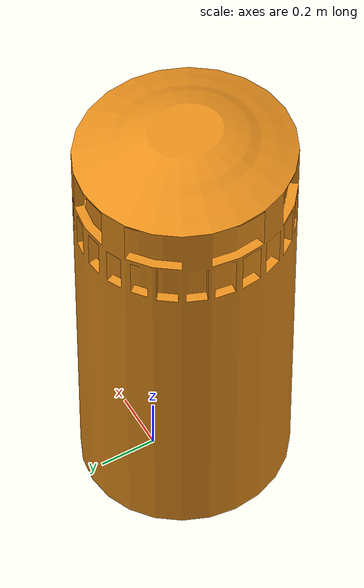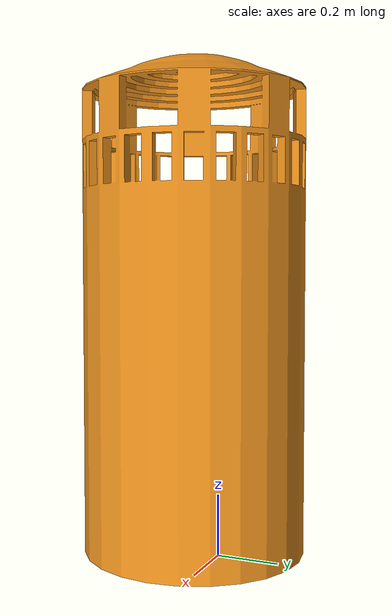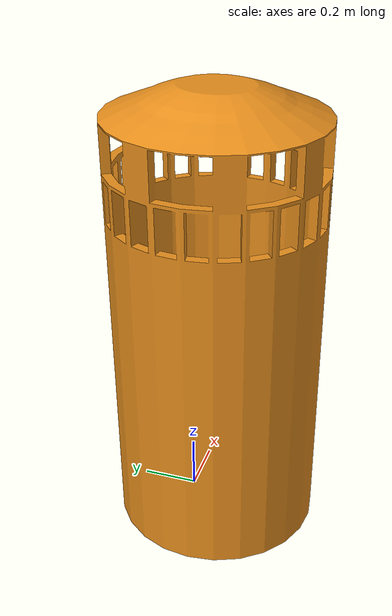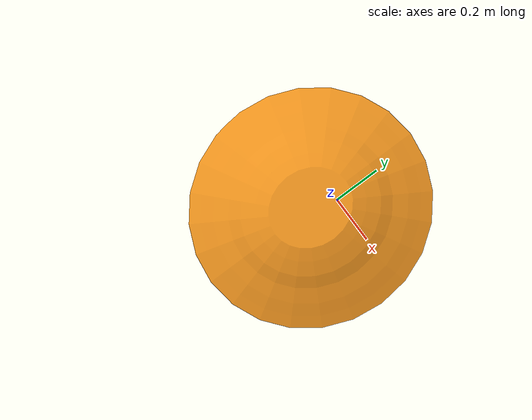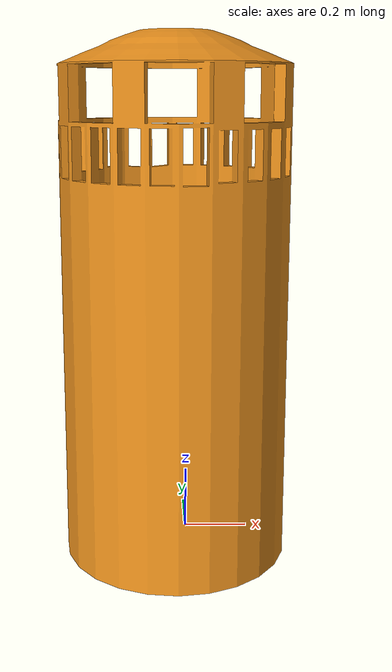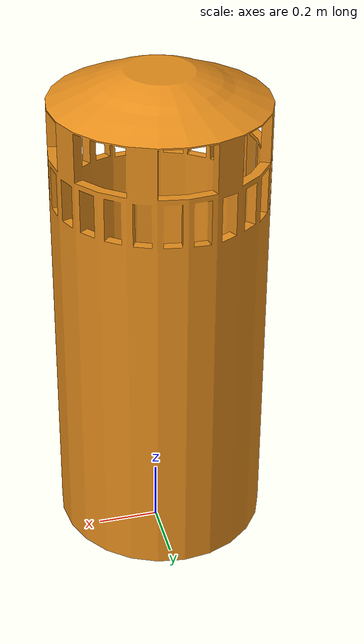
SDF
<?xml version='1.0'?>
<sdf version='1.6'>
  <model name='yellow_bin'>
    <link name='link_2'>
      <pose frame=''>-0.3 -0.35 0 0 -0 0</pose>
      <visual name='visual'>
        <pose frame=''>0 0 0 0 -0 0</pose>
        <geometry>
          <mesh>
            <uri>model://yellow_bin/meshes/green_cylinder.stl</uri>
            <scale>1 1 1</scale>
          </mesh>
        </geometry>
        <material>
          <lighting>1</lighting>
          <script>
            <uri>file://media/materials/scripts/gazebo.material</uri>
            <name>Gazebo/Grey</name>
          </script>
          <ambient>0.898 0.552 0.105 1</ambient>
          <diffuse>0.898 0.552 0.105 1</diffuse>
          <specular>0.01 0.01 0.01 1</specular>
          <emissive>0 0 0 1</emissive>
          <shader type='vertex'>
            <normal_map>__default__</normal_map>
          </shader>
        </material>
        <cast_shadows>1</cast_shadows>
        <transparency>0</transparency>
      </visual>
      <collision name='collision'>
        <laser_retro>0</laser_retro>
        <max_contacts>10</max_contacts>
        <pose frame=''>0 0 0 0 -0 0</pose>
        <geometry>
          <mesh>
            <uri>model://yellow_bin/meshes/green_cylinder.stl</uri>
            <scale>1 1 1</scale>
          </mesh>
        </geometry>
       </collision>
    </link>
    <static>1</static>
    <allow_auto_disable>1</allow_auto_disable>
  </model>
</sdf>
